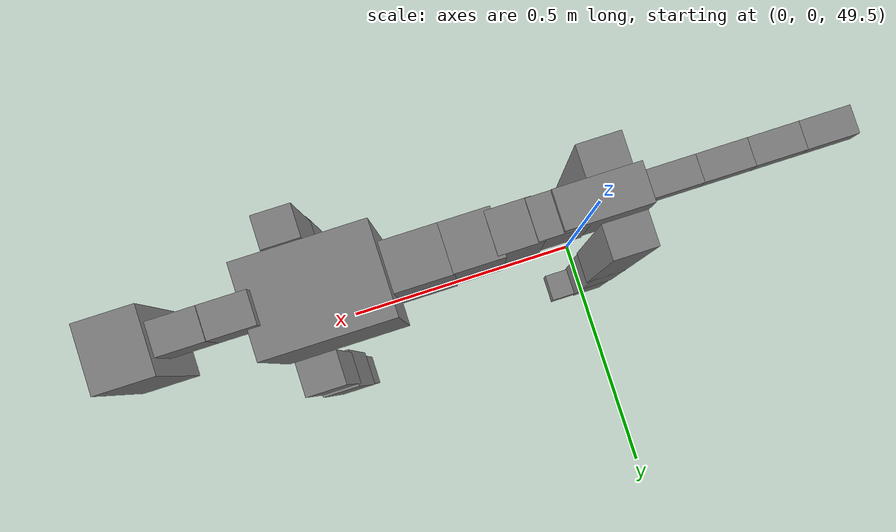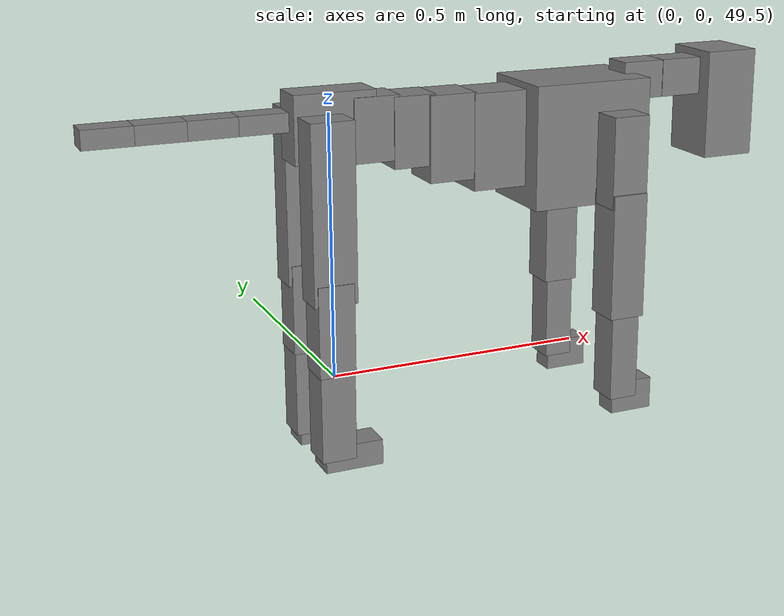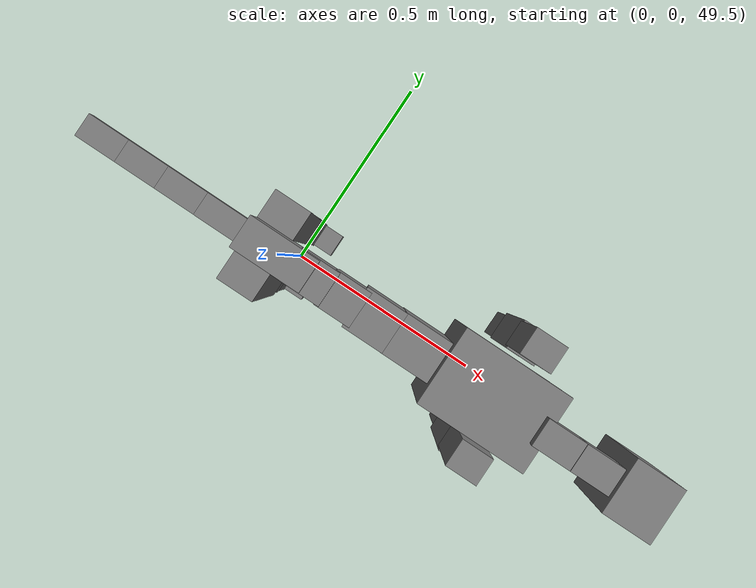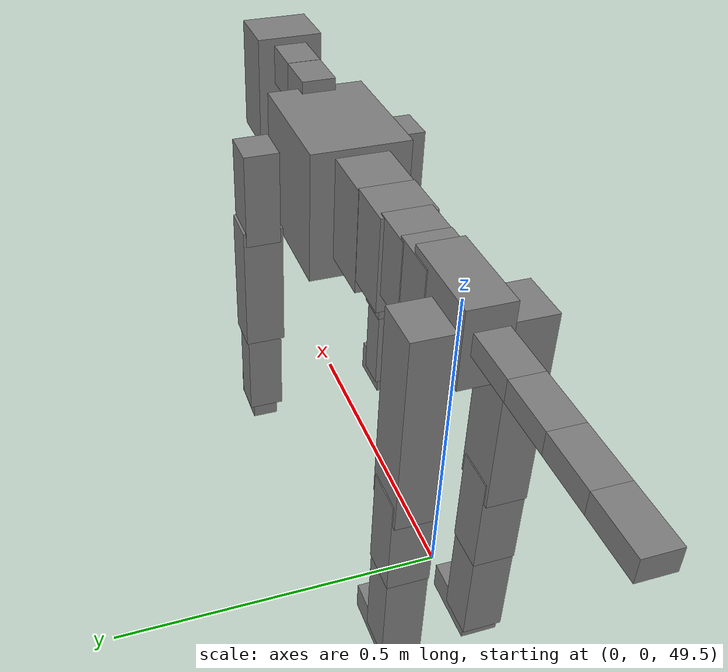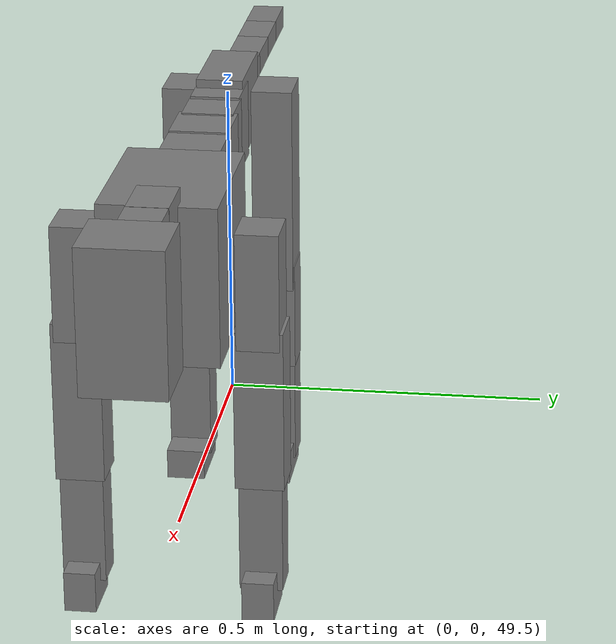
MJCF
<mujoco model="dog">

    <default>
        <joint armature="0.02" stiffness="1" damping="0.2" limited="true"/>
        <geom condim="3" friction="1 0.05 0.05" margin="0.01"/>
        <motor ctrllimited="true" ctrlrange="-1.0 1.0" forcelimited="true" gear="50"/>
    </default>

    <compiler inertiafromgeom="true" angle="radian"/>

    <option timestep="0.016" iterations="50" tolerance="1e-10" solver="Newton" jacobian="dense" cone="pyramidal"/>

    <size nconmax="20000" njmax="60000" nstack="5000000"/>
    <visual>
        <map force="0.1" zfar="30"/>
        <rgba haze="0.15 0.25 0.35 1"/>
        <quality shadowsize="2048"/>
        <global offwidth="800" offheight="800"/>
    </visual>

    <asset>
        <texture type="skybox" builtin="gradient" rgb1="0.3 0.5 0.7" rgb2="0 0 0" width="512" height="512"/>
        <texture name="texplane" type="2d" builtin="checker" rgb1=".2 .3 .4" rgb2=".1 0.15 0.2" width="512" height="512"
                 mark="cross" markrgb=".8 .8 .8"/>
        <texture name="texgeom" type="cube" builtin="flat" mark="cross" width="127" height="1278" rgb1="0.8 0.6 0.4"
                 rgb2="0.8 0.6 0.4" markrgb="1 1 1" random="0.01"/>

        <material name="matplane" reflectance="0.3" texture="texplane" texrepeat="1 1" texuniform="true"/>
        <material name="matgeom" texture="texgeom" texuniform="true" rgba="0.8 0.6 .4 1"/>
    </asset>

    <worldbody>
        <geom name="floor" pos="0 0 0" size="0 0 .25" type="plane" material="matplane" condim="3"/>

        <light directional="false" diffuse=".2 .2 .2" specular="0 0 0" pos="0 0 5" dir="0 0 -1" castshadow="false"/>
        <light mode="targetbodycom" target="torso" directional="false" diffuse=".8 .8 .8" specular="0.3 0.3 0.3"
               pos="0 0 4.0" dir="0 0 -1"/>

        <body name="root" pos="0 0 50">
            <freejoint name="root_1"/>
            <geom type="box" pos="0 0 -0.02" size="0.0774  0.0358  0.063" density="2030"/>

            <body name="spine1" pos="0.054 0 0">
                <joint name="spine1_y" axis="0 1 0" range="0 0.7" limited="true"/>
                <geom type="box" pos="0.02375 0 -0.03" size="0.04375  0.0375  0.05985" density="2030"/>

                <body name="spine2" pos="0.0612 0 0">
                    <joint name="spine2_y" axis="0 1 0" range="-0.15 0.15" limited="true"/>
                    <geom type="box" pos="0.03555  0  -0.04" size="0.04055  0.039  0.06615" density="2030"/>

                    <body name="spine3" pos="0.0730 0 0">
                        <joint name="spine3_y" axis="0 1 0" range="-0.15 0.15" limited="true"/>
                        <geom type="box" pos="0.03555  0  -0.057" size="0.04555  0.0445  0.081" density="2030"/>

                        <body name="spine4" pos="0.0780 0 0">
                            <joint name="spine4_y" axis="0 1 0" range="-0.15 0.15" limited="true"/>
                            <geom type="box" pos="0.05265  0  -0.07" size="0.05265  0.045  0.09135" density="2030"/>

                            <body name="torso" pos="0.1082 0 0">
                                <joint name="torso_y" axis="0 1 0" range="-0.15 0.15" limited="true"/>
                                <geom type="box" pos="0.11925  0  -0.085" size="0.11925  0.085  0.11745"
                                      density="2030"/>

                                <body name="neck1" pos="0.2160  0   0.0180">
                                    <joint name="neck1_y" axis="0 1 0" range="-1.2  -1" limited="true"/>
                                    <geom type="box" pos="0.0423  0  0" size="0.0423  0.03  0.036" density="2325"/>

                                    <body name="neck2" pos="0.0853  0  0">
                                        <joint name="neck2_y" axis="0 1 0" range="0.1  0" limited="true"/>
                                        <geom type="box" pos="0.0423  0  0" size="0.0423  0.03  0.036" density="2325"/>

                                        <body name="head" pos="0.0853  0  0">
                                            <joint name="head_y" axis="0 1 0" range="-0.3  -0.2" limited="true"/>
                                            <geom type="box" pos="0.0531  0  -0.055" size="0.0531  0.06  0.1044"
                                                  density="4030"/>

                                        </body>
                                    </body>
                                </body>

                                <body name="front_shoulder" pos="0.156  0   -0.0480">
                                    <joint name="front_shoulder_y" axis="0 1 0" range="-1 1.5" limited="true"/>
                                    <geom type="box" pos="0 0.13 -0.0601" size="0.0361  0.0308  0.0868" density="1158"/>
                                    <geom type="box" pos="0 -0.13 -0.0601" size="0.0361  0.0308  0.0868"
                                          density="1158"/>

                                    <body name="front_elbow" pos="0  0  -0.1202">
                                        <joint name="front_elbow_y" axis="0 1 0" range="-2 0" limited="true"/>
                                        <geom type="box" pos="0 0.13 -0.1202" size="0.0348  0.0355  0.1202"
                                              density="1081"/>
                                        <geom type="box" pos="0 -0.13 -0.1202" size="0.0348  0.0355  0.1202"
                                              density="1081"/>

                                        <body name="front_wrist" pos="0  0  -0.2404">
                                            <joint name="front_wrist_y" axis="0 1 0" range="-0.2 0" limited="true"/>
                                            <geom type="box" pos="0 0.13 -0.0750" size="0.0283  0.0314  0.0881"
                                                  density="1664"/>
                                            <geom type="box" pos="0 -0.13 -0.0750" size="0.0283  0.0314  0.0881"
                                                  density="1664"/>

                                            <body name="front_finger_end" pos="0  0  -0.1499">
                                                <joint name="front_finger_y" axis="0 1 0" range="-0.4 1"
                                                       limited="true"/>
                                                <geom type="box" pos="0.0232  0.13  -0.0154"
                                                      size="0.0426  0.0232  0.0304" density="1515"/>
                                                <geom type="box" pos="0.0232  -0.13  -0.0154"
                                                      size="0.0426  0.0232  0.0304" density="1515"/>

                                            </body>

                                        </body>
                                    </body>
                                </body>

                            </body>
                        </body>
                    </body>
                </body>
            </body>

            <body name="back_hip" pos="-0.03 0 -0.018">
                <joint name="back_hip_y" axis="0 1 0" range="-1.5 0.3" limited="true"/>
                <geom type="box" pos="0 0.07 -0.1428" size="0.0409  0.0321  0.1656" density="1154"/>
                <geom type="box" pos="0 -0.07 -0.1428" size="0.0409  0.0321  0.1656" density="1154"/>

                <body name="back_knee" pos="0  0  -0.2857">
                    <joint name="back_knee_y" axis="0 1 0" range="0 2.8" limited="true"/>
                    <geom type="box" pos="0 0.07 -0.0704" size="0.0343  0.0338  0.0859" density="1227"/>
                    <geom type="box" pos="0 -0.07 -0.0704" size="0.0343  0.0338  0.0859" density="1227"/>

                    <body name="back_ankle" pos="0  0  -0.1407">
                        <joint name="back_ankle_y" axis="0 1 0" range="-2.2 0" limited="true"/>
                        <geom type="box" pos="0 0.07 -0.0840" size="0.0328  0.0328  0.0952" density="1284"/>
                        <geom type="box" pos="0 -0.07 -0.0840" size="0.0328  0.0328  0.0952" density="1284"/>

                        <body name="back_toe_end" pos="0  0  -0.1679">
                            <joint name="back_toe_y" axis="0 1 0" range="-0.4 1" limited="true"/>
                            <geom type="box" pos="0.0302  0.07  -0.0091" size="0.0553  0.0302  0.0241" density="1515"/>
                            <geom type="box" pos="0.0302  -0.07  -0.0091" size="0.0553  0.0302  0.0241" density="1515"/>

                        </body>
                    </body>
                </body>
            </body>

            <body name="tail1" pos="-0.074 0 -0.006">
                <joint name="tail1_y" axis="0 1 0" range="-0.2 0.2" limited="true"/>
                <geom type="box" pos="-0.0536  0  0" size="0.045  0.025  0.0175" density="1587"/>

                <body name="tail2" pos="-0.09 0 0">
                    <joint name="tail2_y" axis="0 1 0" range="-0.2 0.2" limited="true"/>
                    <geom type="box" pos="-0.0536  0  0" size="0.045  0.025  0.0175" density="1587"/>

                    <body name="tail3" pos="-0.09 0 0">
                        <joint name="tail3_y" axis="0 1 0" range="-0.2 0.2" limited="true"/>
                        <geom type="box" pos="-0.0536  0  0" size="0.045  0.025  0.0175" density="1587"/>

                        <body name="tail4" pos="-0.09 0 0">
                            <joint name="tail4_y" axis="0 1 0" range="-0.2 0.2" limited="true"/>
                            <geom type="box" pos="-0.0536  0  0" size="0.045  0.025  0.0175" density="1587"/>

                        </body>
                    </body>
                </body>
            </body>
        </body>
    </worldbody>

    <actuator>
        <motor joint="spine1_y" forcerange="-150 150     "/>
        <motor joint="spine2_y" forcerange="-150 150     "/>
        <motor joint="spine3_y" forcerange="-150 150     "/>
        <motor joint="spine4_y" forcerange="-150 150     "/>
        <motor joint="torso_y" forcerange="-150 150     "/>
        <motor joint="neck1_y" forcerange="-100 100       "/>
        <motor joint="neck2_y" forcerange="-100 100       "/>
        <motor joint="head_y" forcerange="-150 150       "/>
        <motor joint="front_shoulder_y" forcerange="-138.60 167.01"/>
        <motor joint="front_elbow_y" forcerange="-182.53 175.89"/>
        <motor joint="front_wrist_y" forcerange="-111.59 139.75"/>
        <motor joint="front_finger_y" forcerange="-30.59 53.27"/>
        <motor joint="back_hip_y" forcerange="-300.26 327.26"/>
        <motor joint="back_knee_y" forcerange="-377.87 313.70"/>
        <motor joint="back_angle_y" forcerange="-186.18 238.89"/>
        <motor joint="back_toe_y" forcerange="-114.83 46.54"/>
        <motor joint="tail1_y" forcerange="-50 50     "/>
        <motor joint="tail2_y" forcerange="-50 50     "/>
        <motor joint="tail3_y" forcerange="-50 50     "/>
        <motor joint="tail4_y" forcerange="-50 50     "/>
    </actuator>
</mujoco>
